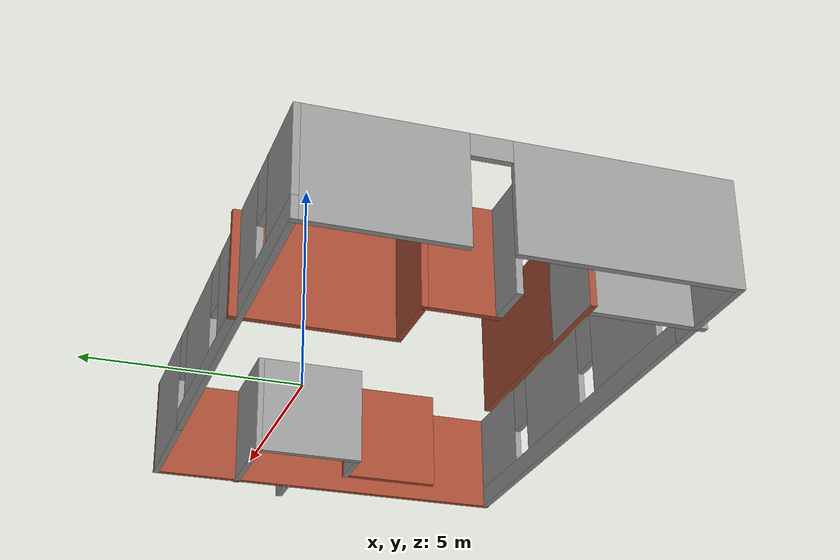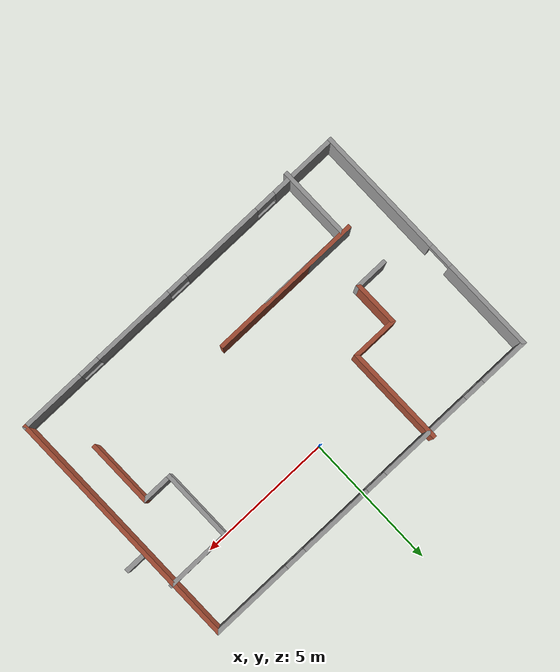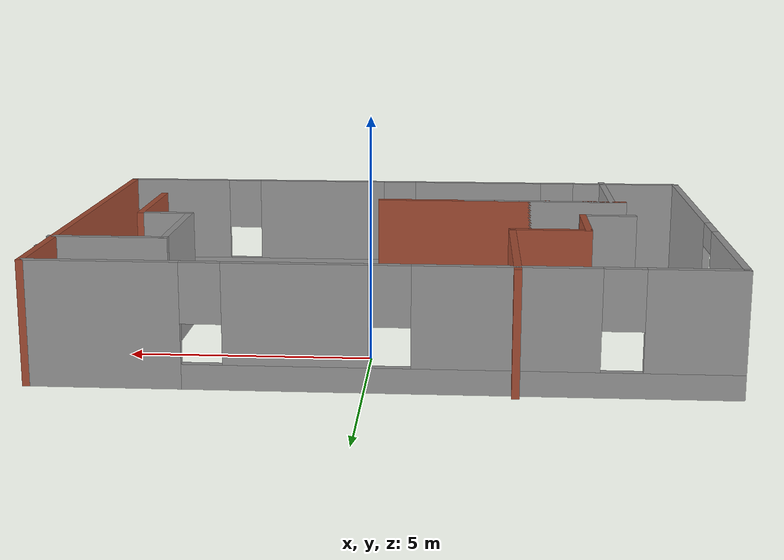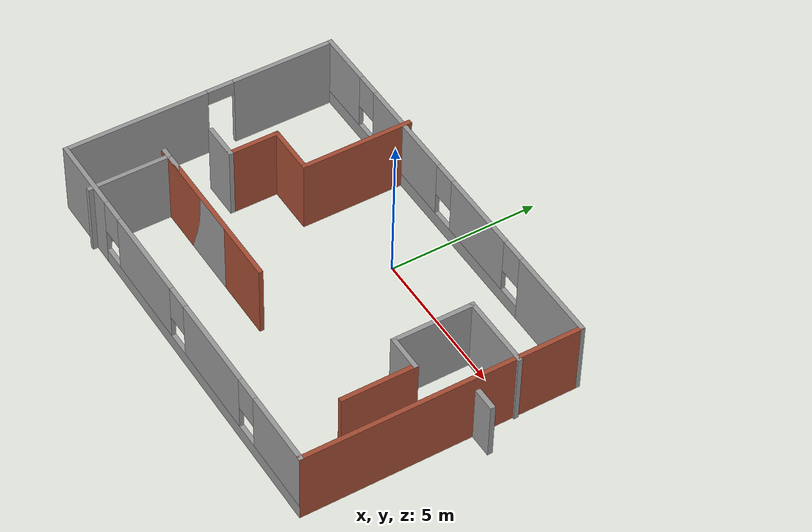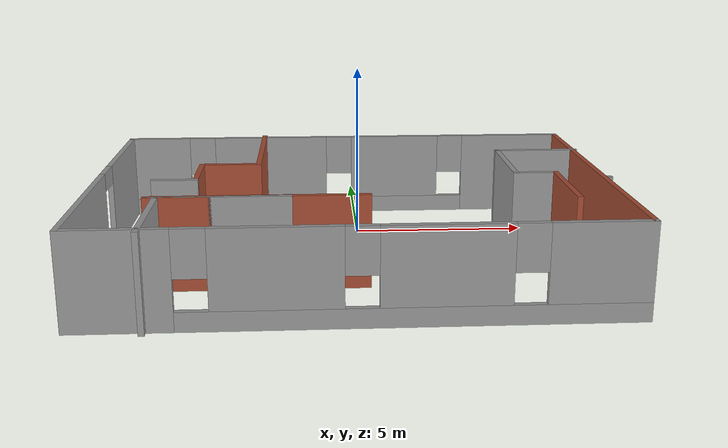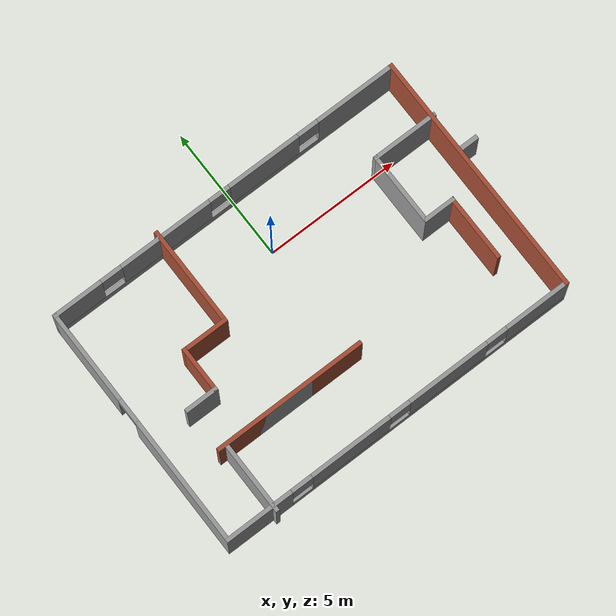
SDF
<?xml version='1.0'?>
<sdf version='1.7'>
  <model name='Room1'>
    <pose>-0.242345 -2.42775 0 0 -0 0</pose>
    <link name='Door_1'>
      <collision name='Door_1_Collision'>
        <geometry>
          <box>
            <size>0.9 0.17 2</size>
          </box>
        </geometry>
        <pose>0 0 1 0 -0 0</pose>
      </collision>
      <visual name='Door_1_Visual'>
        <pose>0 0 1 0 -0 0</pose>
        <geometry>
          <box>
            <size>0.9 0.17 2</size>
          </box>
        </geometry>
        <material>
          <script>
            <uri>file://media/materials/scripts/gazebo.material</uri>
            <name>Gazebo/Grey</name>
          </script>
        </material>
      </visual>
      <pose>7.16501 1.07187 0 0 -0 0</pose>
    </link>
    <link name='Wall_0'>
      <pose>-0.030417 4.53946 0 0 -0 3.14159</pose>
      <visual name='Wall_0_Visual_0'>
        <pose>-5.31891 0 1.25 0 -0 0</pose>
        <geometry>
          <box>
            <size>3.11218 0.15 2.5</size>
          </box>
        </geometry>
        <material>
          <script>
            <uri>file://media/materials/scripts/gazebo.material</uri>
            <name>Gazebo/Grey</name>
          </script>
          <ambient>1 1 1 1</ambient>
        </material>
        <meta>
          <layer>0</layer>
        </meta>
      </visual>
      <collision name='Wall_0_Collision_0'>
        <geometry>
          <box>
            <size>3.11218 0.15 2.5</size>
          </box>
        </geometry>
        <pose>-5.31891 0 1.25 0 -0 0</pose>
      </collision>
      <visual name='Wall_0_Visual_1'>
        <pose>1.55609 0 0.25 0 -0 0</pose>
        <geometry>
          <box>
            <size>10.6378 0.15 0.5</size>
          </box>
        </geometry>
        <material>
          <script>
            <uri>file://media/materials/scripts/gazebo.material</uri>
            <name>Gazebo/Grey</name>
          </script>
          <ambient>1 1 1 1</ambient>
        </material>
        <meta>
          <layer>0</layer>
        </meta>
      </visual>
      <collision name='Wall_0_Collision_1'>
        <geometry>
          <box>
            <size>10.6378 0.15 0.5</size>
          </box>
        </geometry>
        <pose>1.55609 0 0.25 0 -0 0</pose>
      </collision>
      <visual name='Wall_0_Visual_2'>
        <pose>-1.56819 0 1.5 0 -0 0</pose>
        <geometry>
          <box>
            <size>2.78926 0.15 2</size>
          </box>
        </geometry>
        <material>
          <script>
            <uri>file://media/materials/scripts/gazebo.material</uri>
            <name>Gazebo/Grey</name>
          </script>
          <ambient>1 1 1 1</ambient>
        </material>
        <meta>
          <layer>0</layer>
        </meta>
      </visual>
      <collision name='Wall_0_Collision_2'>
        <geometry>
          <box>
            <size>2.78926 0.15 2</size>
          </box>
        </geometry>
        <pose>-1.56819 0 1.5 0 -0 0</pose>
      </collision>
      <visual name='Wall_0_Visual_3'>
        <pose>2.40129 0 1.5 0 -0 0</pose>
        <geometry>
          <box>
            <size>3.5497 0.15 2</size>
          </box>
        </geometry>
        <material>
          <script>
            <uri>file://media/materials/scripts/gazebo.material</uri>
            <name>Gazebo/Grey</name>
          </script>
          <ambient>1 1 1 1</ambient>
        </material>
        <meta>
          <layer>0</layer>
        </meta>
      </visual>
      <collision name='Wall_0_Collision_3'>
        <geometry>
          <box>
            <size>3.5497 0.15 2</size>
          </box>
        </geometry>
        <pose>2.40129 0 1.5 0 -0 0</pose>
      </collision>
      <visual name='Wall_0_Visual_4'>
        <pose>5.92557 0 1.5 0 -0 0</pose>
        <geometry>
          <box>
            <size>1.89885 0.15 2</size>
          </box>
        </geometry>
        <material>
          <script>
            <uri>file://media/materials/scripts/gazebo.material</uri>
            <name>Gazebo/Grey</name>
          </script>
          <ambient>1 1 1 1</ambient>
        </material>
        <meta>
          <layer>0</layer>
        </meta>
      </visual>
      <collision name='Wall_0_Collision_4'>
        <geometry>
          <box>
            <size>1.89885 0.15 2</size>
          </box>
        </geometry>
        <pose>5.92557 0 1.5 0 -0 0</pose>
      </collision>
      <visual name='Wall_0_Visual_5'>
        <pose>-3.36282 0 1.9 0 -0 0</pose>
        <geometry>
          <box>
            <size>0.8 0.15 1.2</size>
          </box>
        </geometry>
        <material>
          <script>
            <uri>file://media/materials/scripts/gazebo.material</uri>
            <name>Gazebo/Grey</name>
          </script>
          <ambient>1 1 1 1</ambient>
        </material>
        <meta>
          <layer>0</layer>
        </meta>
      </visual>
      <collision name='Wall_0_Collision_5'>
        <geometry>
          <box>
            <size>0.8 0.15 1.2</size>
          </box>
        </geometry>
        <pose>-3.36282 0 1.9 0 -0 0</pose>
      </collision>
      <visual name='Wall_0_Visual_6'>
        <pose>0.226442 0 1.9 0 -0 0</pose>
        <geometry>
          <box>
            <size>0.8 0.15 1.2</size>
          </box>
        </geometry>
        <material>
          <script>
            <uri>file://media/materials/scripts/gazebo.material</uri>
            <name>Gazebo/Grey</name>
          </script>
          <ambient>1 1 1 1</ambient>
        </material>
        <meta>
          <layer>0</layer>
        </meta>
      </visual>
      <collision name='Wall_0_Collision_6'>
        <geometry>
          <box>
            <size>0.8 0.15 1.2</size>
          </box>
        </geometry>
        <pose>0.226442 0 1.9 0 -0 0</pose>
      </collision>
      <visual name='Wall_0_Visual_7'>
        <pose>4.57615 0 1.9 0 -0 0</pose>
        <geometry>
          <box>
            <size>0.8 0.15 1.2</size>
          </box>
        </geometry>
        <material>
          <script>
            <uri>file://media/materials/scripts/gazebo.material</uri>
            <name>Gazebo/Grey</name>
          </script>
          <ambient>1 1 1 1</ambient>
        </material>
        <meta>
          <layer>0</layer>
        </meta>
      </visual>
      <collision name='Wall_0_Collision_7'>
        <geometry>
          <box>
            <size>0.8 0.15 1.2</size>
          </box>
        </geometry>
        <pose>4.57615 0 1.9 0 -0 0</pose>
      </collision>
    </link>
    <link name='Wall_1'>
      <pose>-6.83042 -0.010537 0 0 -0 -1.5708</pose>
      <visual name='Wall_1_Visual_0'>
        <pose>-2.86578 0 1.25 0 -0 0</pose>
        <geometry>
          <box>
            <size>3.51844 0.15 2.5</size>
          </box>
        </geometry>
        <material>
          <script>
            <uri>file://media/materials/scripts/gazebo.material</uri>
            <name>Gazebo/Grey</name>
          </script>
          <ambient>1 1 1 1</ambient>
        </material>
        <meta>
          <layer>0</layer>
        </meta>
      </visual>
      <collision name='Wall_1_Collision_0'>
        <geometry>
          <box>
            <size>3.51844 0.15 2.5</size>
          </box>
        </geometry>
        <pose>-2.86578 0 1.25 0 -0 0</pose>
      </collision>
      <visual name='Wall_1_Visual_1'>
        <pose>2.20922 0 1.25 0 -0 0</pose>
        <geometry>
          <box>
            <size>4.83156 0.15 2.5</size>
          </box>
        </geometry>
        <material>
          <script>
            <uri>file://media/materials/scripts/gazebo.material</uri>
            <name>Gazebo/Grey</name>
          </script>
          <ambient>1 1 1 1</ambient>
        </material>
        <meta>
          <layer>0</layer>
        </meta>
      </visual>
      <collision name='Wall_1_Collision_1'>
        <geometry>
          <box>
            <size>4.83156 0.15 2.5</size>
          </box>
        </geometry>
        <pose>2.20922 0 1.25 0 -0 0</pose>
      </collision>
      <visual name='Wall_1_Visual_2'>
        <pose>-0.65656 0 2.25 0 -0 0</pose>
        <geometry>
          <box>
            <size>0.9 0.15 0.5</size>
          </box>
        </geometry>
        <material>
          <script>
            <uri>file://media/materials/scripts/gazebo.material</uri>
            <name>Gazebo/Grey</name>
          </script>
          <ambient>1 1 1 1</ambient>
        </material>
        <meta>
          <layer>0</layer>
        </meta>
      </visual>
      <collision name='Wall_1_Collision_2'>
        <geometry>
          <box>
            <size>0.9 0.15 0.5</size>
          </box>
        </geometry>
        <pose>-0.65656 0 2.25 0 -0 0</pose>
      </collision>
    </link>
    <link name='Wall_10'>
      <collision name='Wall_10_Collision'>
        <geometry>
          <box>
            <size>2.5 0.15 2.5</size>
          </box>
        </geometry>
        <pose>0 0 1.25 0 -0 0</pose>
      </collision>
      <visual name='Wall_10_Visual'>
        <pose>0 0 1.25 0 -0 0</pose>
        <geometry>
          <box>
            <size>2.5 0.15 2.5</size>
          </box>
        </geometry>
        <material>
          <script>
            <uri>file://media/materials/scripts/gazebo.material</uri>
            <name>Gazebo/Grey</name>
          </script>
          <ambient>1 1 1 1</ambient>
        </material>
        <meta>
          <layer>0</layer>
        </meta>
      </visual>
      <pose>5.65542 2.41024 0 0 -0 3.14159</pose>
    </link>
    <link name='Wall_11'>
      <collision name='Wall_11_Collision'>
        <geometry>
          <box>
            <size>2.75 0.15 2.5</size>
          </box>
        </geometry>
        <pose>0 0 1.25 0 -0 0</pose>
      </collision>
      <visual name='Wall_11_Visual'>
        <pose>0 0 1.25 0 -0 0</pose>
        <geometry>
          <box>
            <size>2.75 0.15 2.5</size>
          </box>
        </geometry>
        <material>
          <script>
            <uri>file://media/materials/scripts/gazebo.material</uri>
            <name>Gazebo/Grey</name>
          </script>
          <ambient>1 1 1 1</ambient>
        </material>
        <meta>
          <layer>0</layer>
        </meta>
      </visual>
      <pose>4.48042 1.11024 0 0 -0 -1.5708</pose>
    </link>
    <link name='Wall_12'>
      <collision name='Wall_12_Collision'>
        <geometry>
          <box>
            <size>1.25 0.15 2.5</size>
          </box>
        </geometry>
        <pose>0 0 1.25 0 -0 0</pose>
      </collision>
      <visual name='Wall_12_Visual'>
        <pose>0 0 1.25 0 -0 0</pose>
        <geometry>
          <box>
            <size>1.25 0.15 2.5</size>
          </box>
        </geometry>
        <material>
          <script>
            <uri>file://media/materials/scripts/gazebo.material</uri>
            <name>Gazebo/Grey</name>
          </script>
          <ambient>1 1 1 1</ambient>
        </material>
        <meta>
          <layer>0</layer>
        </meta>
      </visual>
      <pose>5.03042 -0.189762 0 0 -0 0</pose>
    </link>
    <link name='Wall_13'>
      <collision name='Wall_13_Collision'>
        <geometry>
          <box>
            <size>2.5 0.15 2.5</size>
          </box>
        </geometry>
        <pose>0 0 1.25 0 -0 0</pose>
      </collision>
      <visual name='Wall_13_Visual'>
        <pose>0 0 1.25 0 -0 0</pose>
        <geometry>
          <box>
            <size>2.5 0.15 2.5</size>
          </box>
        </geometry>
        <material>
          <script>
            <uri>file://media/materials/scripts/gazebo.material</uri>
            <name>Gazebo/Bricks</name>
          </script>
          <ambient>1 1 1 1</ambient>
        </material>
        <meta>
          <layer>0</layer>
        </meta>
      </visual>
      <pose>5.58042 -1.36476 0 0 -0 -1.5708</pose>
    </link>
    <link name='Wall_16'>
      <collision name='Wall_16_Collision'>
        <geometry>
          <box>
            <size>3.75 0.15 2.5</size>
          </box>
        </geometry>
        <pose>0 0 1.25 0 -0 0</pose>
      </collision>
      <visual name='Wall_16_Visual'>
        <pose>0 0 1.25 0 -0 0</pose>
        <geometry>
          <box>
            <size>3.75 0.15 2.5</size>
          </box>
        </geometry>
        <material>
          <script>
            <uri>file://media/materials/scripts/gazebo.material</uri>
            <name>Gazebo/Bricks</name>
          </script>
          <ambient>1 1 1 1</ambient>
        </material>
        <meta>
          <layer>0</layer>
        </meta>
      </visual>
      <pose>-2.62942 2.92197 0 0 -0 -1.5708</pose>
    </link>
    <link name='Wall_17'>
      <collision name='Wall_17_Collision'>
        <geometry>
          <box>
            <size>1.75 0.15 2.5</size>
          </box>
        </geometry>
        <pose>0 0 1.25 0 -0 0</pose>
      </collision>
      <visual name='Wall_17_Visual'>
        <pose>0 0 1.25 0 -0 0</pose>
        <geometry>
          <box>
            <size>1.75 0.15 2.5</size>
          </box>
        </geometry>
        <material>
          <script>
            <uri>file://media/materials/scripts/gazebo.material</uri>
            <name>Gazebo/Bricks</name>
          </script>
          <ambient>1 1 1 1</ambient>
        </material>
        <meta>
          <layer>0</layer>
        </meta>
      </visual>
      <pose>-3.42943 1.12197 0 0 -0 3.14159</pose>
    </link>
    <link name='Wall_18'>
      <collision name='Wall_18_Collision'>
        <geometry>
          <box>
            <size>1.75 0.15 2.5</size>
          </box>
        </geometry>
        <pose>0 0 1.25 0 -0 0</pose>
      </collision>
      <visual name='Wall_18_Visual'>
        <pose>0 0 1.25 0 -0 0</pose>
        <geometry>
          <box>
            <size>1.75 0.15 2.5</size>
          </box>
        </geometry>
        <material>
          <script>
            <uri>file://media/materials/scripts/gazebo.material</uri>
            <name>Gazebo/Bricks</name>
          </script>
          <ambient>1 1 1 1</ambient>
        </material>
        <meta>
          <layer>0</layer>
        </meta>
      </visual>
      <pose>-4.22942 0.321969 0 0 -0 -1.5708</pose>
    </link>
    <link name='Wall_19'>
      <collision name='Wall_19_Collision'>
        <geometry>
          <box>
            <size>1.25 0.15 2.5</size>
          </box>
        </geometry>
        <pose>0 0 1.25 0 -0 0</pose>
      </collision>
      <visual name='Wall_19_Visual'>
        <pose>0 0 1.25 0 -0 0</pose>
        <geometry>
          <box>
            <size>1.25 0.15 2.5</size>
          </box>
        </geometry>
        <material>
          <script>
            <uri>file://media/materials/scripts/gazebo.material</uri>
            <name>Gazebo/Grey</name>
          </script>
          <ambient>1 1 1 1</ambient>
        </material>
        <meta>
          <layer>0</layer>
        </meta>
      </visual>
      <pose>-4.77942 -0.478032 0 0 -0 3.14159</pose>
    </link>
    <link name='Wall_2'>
      <pose>-0.030417 -4.56054 0 0 -0 0</pose>
      <visual name='Wall_2_Visual_0'>
        <pose>-5.57577 0 1.25 0 -0 0</pose>
        <geometry>
          <box>
            <size>2.59846 0.15 2.5</size>
          </box>
        </geometry>
        <material>
          <script>
            <uri>file://media/materials/scripts/gazebo.material</uri>
            <name>Gazebo/Grey</name>
          </script>
          <ambient>1 1 1 1</ambient>
        </material>
        <meta>
          <layer>0</layer>
        </meta>
      </visual>
      <collision name='Wall_2_Collision_0'>
        <geometry>
          <box>
            <size>2.59846 0.15 2.5</size>
          </box>
        </geometry>
        <pose>-5.57577 0 1.25 0 -0 0</pose>
      </collision>
      <visual name='Wall_2_Visual_1'>
        <pose>1.29923 0 0.25 0 -0 0</pose>
        <geometry>
          <box>
            <size>11.1515 0.15 0.5</size>
          </box>
        </geometry>
        <material>
          <script>
            <uri>file://media/materials/scripts/gazebo.material</uri>
            <name>Gazebo/Grey</name>
          </script>
          <ambient>1 1 1 1</ambient>
        </material>
        <meta>
          <layer>0</layer>
        </meta>
      </visual>
      <collision name='Wall_2_Collision_1'>
        <geometry>
          <box>
            <size>11.1515 0.15 0.5</size>
          </box>
        </geometry>
        <pose>1.29923 0 0.25 0 -0 0</pose>
      </collision>
      <visual name='Wall_2_Visual_2'>
        <pose>-1.91461 0 1.5 0 -0 0</pose>
        <geometry>
          <box>
            <size>3.12386 0.15 2</size>
          </box>
        </geometry>
        <material>
          <script>
            <uri>file://media/materials/scripts/gazebo.material</uri>
            <name>Gazebo/Grey</name>
          </script>
          <ambient>1 1 1 1</ambient>
        </material>
        <meta>
          <layer>0</layer>
        </meta>
      </visual>
      <collision name='Wall_2_Collision_2'>
        <geometry>
          <box>
            <size>3.12386 0.15 2</size>
          </box>
        </geometry>
        <pose>-1.91461 0 1.5 0 -0 0</pose>
      </collision>
      <visual name='Wall_2_Visual_3'>
        <pose>2.00924 0 1.5 0 -0 0</pose>
        <geometry>
          <box>
            <size>3.12386 0.15 2</size>
          </box>
        </geometry>
        <material>
          <script>
            <uri>file://media/materials/scripts/gazebo.material</uri>
            <name>Gazebo/Grey</name>
          </script>
          <ambient>1 1 1 1</ambient>
        </material>
        <meta>
          <layer>0</layer>
        </meta>
      </visual>
      <collision name='Wall_2_Collision_3'>
        <geometry>
          <box>
            <size>3.12386 0.15 2</size>
          </box>
        </geometry>
        <pose>2.00924 0 1.5 0 -0 0</pose>
      </collision>
      <visual name='Wall_2_Visual_4'>
        <pose>5.62309 0 1.5 0 -0 0</pose>
        <geometry>
          <box>
            <size>2.50383 0.15 2</size>
          </box>
        </geometry>
        <material>
          <script>
            <uri>file://media/materials/scripts/gazebo.material</uri>
            <name>Gazebo/Grey</name>
          </script>
          <ambient>1 1 1 1</ambient>
        </material>
        <meta>
          <layer>0</layer>
        </meta>
      </visual>
      <collision name='Wall_2_Collision_4'>
        <geometry>
          <box>
            <size>2.50383 0.15 2</size>
          </box>
        </geometry>
        <pose>5.62309 0 1.5 0 -0 0</pose>
      </collision>
      <visual name='Wall_2_Visual_5'>
        <pose>-3.87654 0 1.9 0 -0 0</pose>
        <geometry>
          <box>
            <size>0.8 0.15 1.2</size>
          </box>
        </geometry>
        <material>
          <script>
            <uri>file://media/materials/scripts/gazebo.material</uri>
            <name>Gazebo/Grey</name>
          </script>
          <ambient>1 1 1 1</ambient>
        </material>
        <meta>
          <layer>0</layer>
        </meta>
      </visual>
      <collision name='Wall_2_Collision_5'>
        <geometry>
          <box>
            <size>0.8 0.15 1.2</size>
          </box>
        </geometry>
        <pose>-3.87654 0 1.9 0 -0 0</pose>
      </collision>
      <visual name='Wall_2_Visual_6'>
        <pose>0.047315 0 1.9 0 -0 0</pose>
        <geometry>
          <box>
            <size>0.8 0.15 1.2</size>
          </box>
        </geometry>
        <material>
          <script>
            <uri>file://media/materials/scripts/gazebo.material</uri>
            <name>Gazebo/Grey</name>
          </script>
          <ambient>1 1 1 1</ambient>
        </material>
        <meta>
          <layer>0</layer>
        </meta>
      </visual>
      <collision name='Wall_2_Collision_6'>
        <geometry>
          <box>
            <size>0.8 0.15 1.2</size>
          </box>
        </geometry>
        <pose>0.047315 0 1.9 0 -0 0</pose>
      </collision>
      <visual name='Wall_2_Visual_7'>
        <pose>3.97117 0 1.9 0 -0 0</pose>
        <geometry>
          <box>
            <size>0.8 0.15 1.2</size>
          </box>
        </geometry>
        <material>
          <script>
            <uri>file://media/materials/scripts/gazebo.material</uri>
            <name>Gazebo/Grey</name>
          </script>
          <ambient>1 1 1 1</ambient>
        </material>
        <meta>
          <layer>0</layer>
        </meta>
      </visual>
      <collision name='Wall_2_Collision_7'>
        <geometry>
          <box>
            <size>0.8 0.15 1.2</size>
          </box>
        </geometry>
        <pose>3.97117 0 1.9 0 -0 0</pose>
      </collision>
    </link>
    <link name='Wall_3'>
      <collision name='Wall_3_Collision'>
        <geometry>
          <box>
            <size>9.25 0.15 2.5</size>
          </box>
        </geometry>
        <pose>0 0 1.25 0 -0 0</pose>
      </collision>
      <visual name='Wall_3_Visual'>
        <pose>0 0 1.25 0 -0 0</pose>
        <geometry>
          <box>
            <size>9.25 0.15 2.5</size>
          </box>
        </geometry>
        <material>
          <script>
            <uri>file://media/materials/scripts/gazebo.material</uri>
            <name>Gazebo/Bricks</name>
          </script>
          <ambient>1 1 1 1</ambient>
        </material>
        <meta>
          <layer>0</layer>
        </meta>
      </visual>
      <pose>6.76958 -0.010537 0 0 -0 1.5708</pose>
    </link>
    <link name='Wall_5'>
      <collision name='Wall_5_Collision'>
        <geometry>
          <box>
            <size>2.75 0.15 2.5</size>
          </box>
        </geometry>
        <pose>0 0 1.25 0 -0 0</pose>
      </collision>
      <visual name='Wall_5_Visual'>
        <pose>0 0 1.25 0 -0 0</pose>
        <geometry>
          <box>
            <size>2.75 0.15 2.5</size>
          </box>
        </geometry>
        <material>
          <script>
            <uri>file://media/materials/scripts/gazebo.material</uri>
            <name>Gazebo/Grey</name>
          </script>
          <ambient>1 1 1 1</ambient>
        </material>
        <meta>
          <layer>0</layer>
        </meta>
      </visual>
      <pose>-5.03241 -3.42197 0 0 -0 -1.5708</pose>
    </link>
    <link name='Wall_7'>
      <collision name='Wall_7_Collision'>
        <geometry>
          <box>
            <size>3.75 0.15 2.5</size>
          </box>
        </geometry>
        <pose>0 0 1.25 0 -0 0</pose>
      </collision>
      <visual name='Wall_7_Visual'>
        <pose>0 0 1.25 0 -0 0</pose>
        <geometry>
          <box>
            <size>3.75 0.15 2.5</size>
          </box>
        </geometry>
        <material>
          <script>
            <uri>file://media/materials/scripts/gazebo.material</uri>
            <name>Gazebo/Grey</name>
          </script>
          <ambient>1 1 1 1</ambient>
        </material>
        <meta>
          <layer>0</layer>
        </meta>
      </visual>
      <pose>-3.48648 -2.09155 0 0 -0 3.14159</pose>
    </link>
    <link name='Wall_8'>
      <collision name='Wall_8_Collision'>
        <geometry>
          <box>
            <size>5.75 0.15 2.5</size>
          </box>
        </geometry>
        <pose>0 0 1.25 0 -0 0</pose>
      </collision>
      <visual name='Wall_8_Visual'>
        <pose>0 0 1.25 0 -0 0</pose>
        <geometry>
          <box>
            <size>5.75 0.15 2.5</size>
          </box>
        </geometry>
        <material>
          <script>
            <uri>file://media/materials/scripts/gazebo.material</uri>
            <name>Gazebo/Bricks</name>
          </script>
          <ambient>1 1 1 1</ambient>
        </material>
        <meta>
          <layer>0</layer>
        </meta>
      </visual>
      <pose>-2.48648 -2.09155 0 0 -0 0</pose>
    </link>
    <static>1</static>
  </model>
</sdf>
